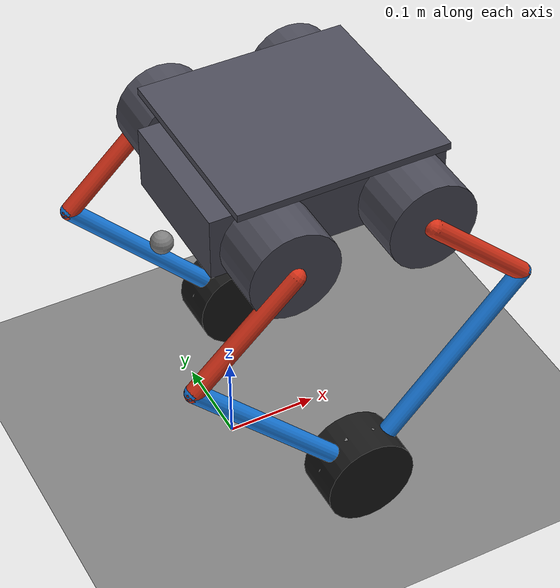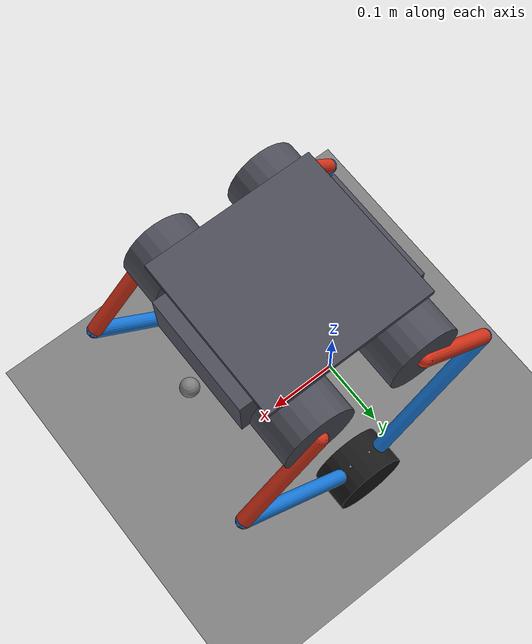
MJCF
<?xml version='1.0' encoding='utf-8'?>
<mujoco model="wheelleg_dm8009_mf9025">
    <!-- DM8009 + MF9025v2 16T; l1=l4=150mm, l2=l3=270mm, l5=150mm; nominal mass/inertia, not hardware acceptance. --><compiler angle="radian" autolimits="true" />
    <option timestep="0.0005" gravity="0 0 -9.81" wind="0 0 0" integrator="implicitfast" density="1.225" viscosity="1.8e-5" />
    <visual>
        <global realtime="1" />
        <quality shadowsize="2048" numslices="16" offsamples="4" />
        <headlight diffuse="1 1 1" specular="0.5 0.5 0.5" active="1" />
    </visual>
    <asset>
        <texture type="skybox" file="../asset/desert.png" gridsize="3 4" gridlayout=".U..LFRB.D.." />
        <texture name="plane" type="2d" builtin="checker" rgb1=".1 .1 .1" rgb2=".9 .9 .9" width="512" height="512" mark="cross" markrgb=".8 .8 .8" />
        <material name="plane" reflectance="0.3" texture="plane" texrepeat="1 1" texuniform="true" />
        <material name="chassis" rgba="0.3 0.3 0.35 1" />
        <material name="active" rgba="0.85 0.2 0.1 1" />
        <material name="coupler" rgba="0.1 0.5 0.9 1" />
        <material name="wheel" rgba="0.1 0.1 0.1 1" />
    </asset>
    <worldbody>
        <camera name="demo" mode="trackcom" pos="0 -1.8 0.75" xyaxes="1 0 0 0 0.32 0.95" />
        <geom name="floor" type="plane" pos="0 0 0" size="5 5 0.05" material="plane" condim="3" friction=".8 .02 .001" />
        <light directional="true" ambient=".05 .05 .05" pos="30 30 30" dir="0 -2 -1" diffuse=".6 .6 .6" specular=".4 .4 .4" />
        <body name="chassis" pos="0 0 0.35">
            <freejoint />
            <geom name="chassis_box" type="box" pos="0.075 0 0" size=".130 .080 .035" mass=".50" material="chassis" contype="0" conaffinity="0" />
            <geom name="chassis_lid" type="box" pos="0.075 0 0.057" size=".115 .110 .004" mass=".07" material="chassis" contype="0" conaffinity="0" />
            <site name="body_imu" pos="0.075 0 0" size="0.02" rgba="1 0 1 1" />
            <geom name="motor_alphaL" type="cylinder" size="0.049 0.03085" euler="1.5708 0 0" pos="0 -0.11915 0" mass="0.896" rgba="0.3 0.3 0.35 1" contype="0" conaffinity="0" />
            <geom name="motor_betaL" type="cylinder" size="0.049 0.03085" euler="1.5708 0 0" pos="0.15 -0.11915 0" mass="0.896" rgba="0.3 0.3 0.35 1" contype="0" conaffinity="0" />
            <geom name="motor_alphaR" type="cylinder" size="0.049 0.03085" euler="1.5708 0 0" pos="0 0.11915 0" mass="0.896" rgba="0.3 0.3 0.35 1" contype="0" conaffinity="0" />
            <geom name="motor_betaR" type="cylinder" size="0.049 0.03085" euler="1.5708 0 0" pos="0.15 0.11915 0" mass="0.896" rgba="0.3 0.3 0.35 1" contype="0" conaffinity="0" />
            <body name="legL" pos="0 -0.15 0">
                <joint name="alphaL" type="hinge" axis="0 1 0" pos="0 0 0" damping="0.01" armature="0.0162" limited="true" range="-1.5 1.5" />
                <geom name="thighA_L" type="capsule" fromto="0 0 0 -0.109323039214741 0 -0.102705759803685" size=".010" mass="0.08" material="active" contype="0" conaffinity="0" />
                <body name="kneeA_L" pos="-0.109323039214741 0 -0.102705759803685">
                    <joint name="passA_L" type="hinge" axis="0 1 0" pos="0 0 0" damping="0.01" armature="1e-5" limited="true" range="-2.5 2.5" />
                    <geom name="shankA_L" type="capsule" fromto="0 0 0 0.184323039214741 0 -0.197294240196315" size=".010" mass="0.14" material="coupler" contype="0" conaffinity="0" />
                    <body name="wheelL" pos="0.184323039214741 0 -0.197294240196315">
                        <inertial pos="0 0 0" mass="0.3851218280520136" diaginertia="0.000479635919154778 0.00076510625 0.000479635919154778" />
                        <joint name="wheel1" type="hinge" axis="0 1 0" pos="0 0 0" damping="0.005" armature="0" />
                        <geom name="wheel_collide_L" type="ellipsoid" size="0.05 0.0275 0.05" pos="0 0 0" mass="0" contype="1" conaffinity="1" friction=".8 .02 .001" solref="0.003 2" solimp="0.9 0.95 0.001" />
                        <geom name="wheel_geom_L" type="cylinder" size="0.05 0.0275" euler="1.5708 0 0" mass="0.0" material="wheel" contype="0" conaffinity="0" />
                        <site name="wheel_contact_L" pos="0 0 0" size="0.01" rgba="0 1 0 0.5" />
                        <site name="wheel_axle_L" pos="0 0 0" size="0.012" rgba="0.9 0.9 0 0.8" />
                    </body>
                    <geom name="wheel_stator_L" type="cylinder" pos="0.184323039214741 0 -0.197294240196315" size="0.0445 0.0265" quat="0.707106781186548 0.707106781186548 0 0" mass="0.7278781719479863" rgba=".25 .25 .28 1" contype="0" conaffinity="0" />
                </body>
            </body>
            <body name="legL_D" pos="0.15 -0.15 0">
                <joint name="betaL" type="hinge" axis="0 1 0" pos="0 0 0" damping="0.01" armature="0.0162" limited="true" range="-1.5 1.5" />
                <geom name="thighB_L" type="capsule" fromto="0 0 0 0.109323039214741 0 -0.102705759803685" size=".010" mass="0.08" material="active" contype="0" conaffinity="0" />
                <body name="kneeB_L" pos="0.109323039214741 0 -0.102705759803685">
                    <joint name="passC_L" type="hinge" axis="0 1 0" pos="0 0 0" damping="0.01" armature="1e-5" limited="true" range="-2.5 2.5" />
                    <geom name="shankB_L" type="capsule" fromto="0 0 0 -0.184323039214741 0 -0.197294240196315" size=".010" mass="0.14" material="coupler" contype="0" conaffinity="0" />
                    <site name="couplerB_L_end" pos="-0.184323039214741 0 -0.197294240196315" size="0.01" rgba="0.9 0.9 0 0.8" />
                </body>
            </body>
            <body name="legR" pos="0 0.15 0">
                <joint name="alphaR" type="hinge" axis="0 1 0" pos="0 0 0" damping="0.01" armature="0.0162" limited="true" range="-1.5 1.5" />
                <geom name="thighA_R" type="capsule" fromto="0 0 0 -0.109323039214741 0 -0.102705759803685" size=".010" mass="0.08" material="active" contype="0" conaffinity="0" />
                <body name="kneeA_R" pos="-0.109323039214741 0 -0.102705759803685">
                    <joint name="passA_R" type="hinge" axis="0 1 0" pos="0 0 0" damping="0.01" armature="1e-5" limited="true" range="-2.5 2.5" />
                    <geom name="shankA_R" type="capsule" fromto="0 0 0 0.184323039214741 0 -0.197294240196315" size=".010" mass="0.14" material="coupler" contype="0" conaffinity="0" />
                    <body name="wheelR" pos="0.184323039214741 0 -0.197294240196315">
                        <inertial pos="0 0 0" mass="0.3851218280520136" diaginertia="0.000479635919154778 0.00076510625 0.000479635919154778" />
                        <joint name="wheel2" type="hinge" axis="0 1 0" pos="0 0 0" damping="0.005" armature="0" />
                        <geom name="wheel_collide_R" type="ellipsoid" size="0.05 0.0275 0.05" pos="0 0 0" mass="0" contype="1" conaffinity="1" friction=".8 .02 .001" solref="0.003 2" solimp="0.9 0.95 0.001" />
                        <geom name="wheel_geom_R" type="cylinder" size="0.05 0.0275" euler="1.5708 0 0" mass="0.0" material="wheel" contype="0" conaffinity="0" />
                        <site name="wheel_contact_R" pos="0 0 0" size="0.01" rgba="0 1 0 0.5" />
                        <site name="wheel_axle_R" pos="0 0 0" size="0.012" rgba="0.9 0.9 0 0.8" />
                    </body>
                    <geom name="wheel_stator_R" type="cylinder" pos="0.184323039214741 0 -0.197294240196315" size="0.0445 0.0265" quat="0.707106781186548 0.707106781186548 0 0" mass="0.7278781719479863" rgba=".25 .25 .28 1" contype="0" conaffinity="0" />
                </body>
            </body>
            <body name="legR_D" pos="0.15 0.15 0">
                <joint name="betaR" type="hinge" axis="0 1 0" pos="0 0 0" damping="0.01" armature="0.0162" limited="true" range="-1.5 1.5" />
                <geom name="thighB_R" type="capsule" fromto="0 0 0 0.109323039214741 0 -0.102705759803685" size=".010" mass="0.08" material="active" contype="0" conaffinity="0" />
                <body name="kneeB_R" pos="0.109323039214741 0 -0.102705759803685">
                    <joint name="passC_R" type="hinge" axis="0 1 0" pos="0 0 0" damping="0.01" armature="1e-5" limited="true" range="-2.5 2.5" />
                    <geom name="shankB_R" type="capsule" fromto="0 0 0 -0.184323039214741 0 -0.197294240196315" size=".010" mass="0.14" material="coupler" contype="0" conaffinity="0" />
                    <site name="couplerB_R_end" pos="-0.184323039214741 0 -0.197294240196315" size="0.01" rgba="0.9 0.9 0 0.8" />
                </body>
            </body>
            <geom name="caster_front" type="sphere" size="0.012" pos="0.22 0 -0.045" mass=".010" rgba="0.5 0.5 0.5 1" contype="1" conaffinity="1" friction="0.8 0.05 0.001" solref="0.01 1" solimp="0.8 0.9 0.001" />
            <geom name="caster_back" type="sphere" size="0.012" pos="-0.07 0 -0.045" mass=".010" rgba="0.5 0.5 0.5 1" contype="1" conaffinity="1" friction="0.8 0.05 0.001" solref="0.01 1" solimp="0.8 0.9 0.001" />
        </body>
    </worldbody>
    <equality>
        <connect name="l_loop" site1="couplerB_L_end" site2="wheel_axle_L" solref="0.002 1" solimp="0.95 0.99 0.001" />
        <connect name="r_loop" site1="couplerB_R_end" site2="wheel_axle_R" solref="0.002 1" solimp="0.95 0.99 0.001" />
    </equality>
    <actuator>
        <motor name="motor_alphaL" joint="alphaL" gear="1" ctrllimited="true" ctrlrange="-40 40" />
        <motor name="motor_betaL" joint="betaL" gear="1" ctrllimited="true" ctrlrange="-40 40" />
        <motor name="motor_alphaR" joint="alphaR" gear="1" ctrllimited="true" ctrlrange="-40 40" />
        <motor name="motor_betaR" joint="betaR" gear="1" ctrllimited="true" ctrlrange="-40 40" />
        <motor name="motor_wheelL" joint="wheel1" gear="1" ctrllimited="true" ctrlrange="-4.5 4.5" />
        <motor name="motor_wheelR" joint="wheel2" gear="1" ctrllimited="true" ctrlrange="-4.5 4.5" />
    </actuator>
    <sensor>
        <framequat name="body_orientation" objtype="site" objname="body_imu" />
        <gyro name="body_gyro" site="body_imu" />
        <accelerometer name="body_accel" site="body_imu" />
        <jointpos name="alpha_L" joint="alphaL" />
        <jointpos name="beta_L" joint="betaL" />
        <jointpos name="alpha_R" joint="alphaR" />
        <jointpos name="beta_R" joint="betaR" />
        <jointpos name="passA_L_s" joint="passA_L" />
        <jointpos name="passC_L_s" joint="passC_L" />
        <jointpos name="passA_R_s" joint="passA_R" />
        <jointpos name="passC_R_s" joint="passC_R" />
        <jointpos name="wheel_joint_angle1" joint="wheel1" />
        <jointpos name="wheel_joint_angle2" joint="wheel2" />
        <jointvel name="wheel_joint_speed1" joint="wheel1" />
        <jointvel name="wheel_joint_speed2" joint="wheel2" />
        <force name="wheel1_ground_force" site="wheel_contact_L" />
        <force name="wheel2_ground_force" site="wheel_contact_R" />
    </sensor>
    <keyframe>
        <key name="stand" qpos="0 0 0.35 1 0 0 0 0 0 0 0 0 0 0 0 0 0" />
        <key name="crouch" qpos="0 0 0.23 1 0 0 0 0.572556604066029 -0.789912059347134 0 -0.572556604066029 0.789912059347134 0.572556604066029 -0.789912059347134 0 -0.572556604066029 0.789912059347134" />
    </keyframe>
</mujoco>
